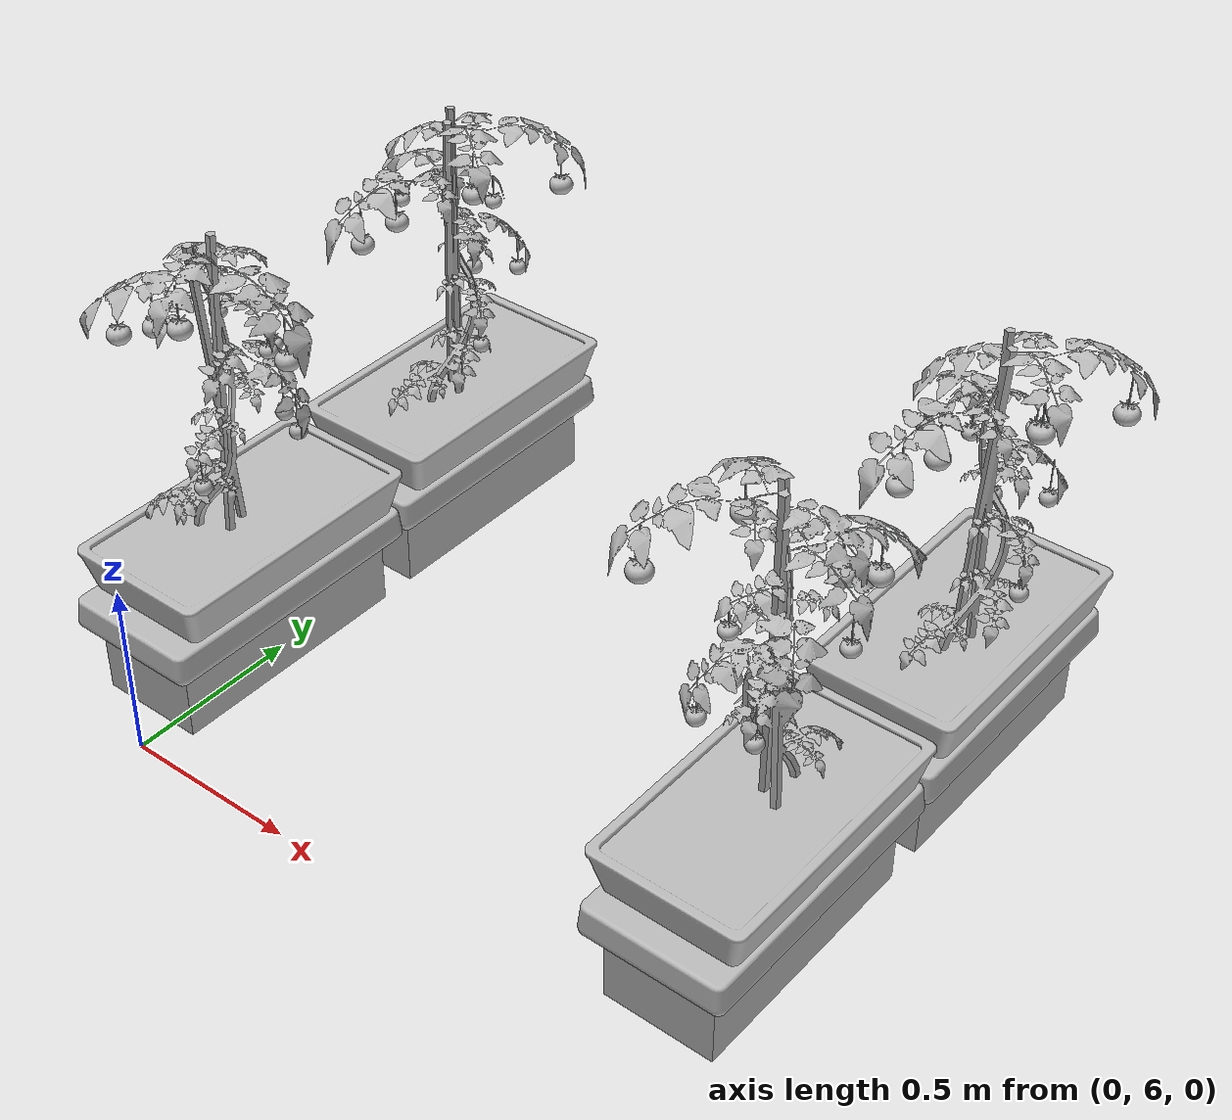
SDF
<sdf version="1.6">
 <world name="default">
  <model name="plant08">
   <static>0</static>
   <link name="tomato_plant_link">
    <inertial>
     <mass>20</mass>
     <inertia><ixx>1</ixx><ixy>0</ixy><ixz>0</ixz><iyy>1</iyy><iyz>0</iyz><izz>1</izz></inertia>
    </inertial>
    <visual name="visual">
     <geometry><mesh><uri>model://tomato_plant/meshes/tomato_plant.obj</uri></mesh></geometry>
    </visual>
    <collision name="collision">
     <pose>0 0 0.01 0 -0 0</pose>
     <geometry><cylinder><radius>0.2</radius><length>0.02</length></cylinder></geometry>
    </collision>
   </link>
   <link name="t_link_0">
    <pose>0.176111 0.046061 0.713729 0 -0 0</pose>
    <inertial>
     <mass>0.1</mass>
     <inertia><ixx>1</ixx><ixy>0</ixy><ixz>0</ixz><iyy>1</iyy><iyz>0</iyz><izz>1</izz></inertia>
    </inertial>
    <collision name="collision"><geometry><sphere><radius>0.02</radius></sphere></geometry></collision>
    <visual name="visual">
     <geometry><mesh><uri>model://green_tomato/meshes/green_tomato.obj</uri></mesh></geometry>
    </visual>
   </link>
   <joint name="t_joint_0" type="fixed">
    <parent>tomato_plant_link</parent>
    <child>t_link_0</child>
    <axis>
     <xyz>0 0 1</xyz>
     <use_parent_model_frame>1</use_parent_model_frame>
     <limit><lower>-1e+16</lower><upper>1e+16</upper></limit>
    </axis>
    <sensor name="force_torque" type="force_torque">
     <always_on>1</always_on>
     <update_rate>250</update_rate>
     <plugin name="breakable_0" filename="libBreakableJointPlugin.so">
      <breaking_force_N>20</breaking_force_N>
     </plugin>
    </sensor>
   </joint>
   <link name="t_link_1">
    <pose>0.063172 0.108629 0.685474 0 -0 0</pose>
    <inertial>
     <mass>0.1</mass>
     <inertia><ixx>1</ixx><ixy>0</ixy><ixz>0</ixz><iyy>1</iyy><iyz>0</iyz><izz>1</izz></inertia>
    </inertial>
    <collision name="collision"><geometry><sphere><radius>0.02</radius></sphere></geometry></collision>
    <visual name="visual">
     <geometry><mesh><uri>model://green_tomato/meshes/green_tomato.obj</uri></mesh></geometry>
    </visual>
   </link>
   <joint name="t_joint_1" type="fixed">
    <parent>tomato_plant_link</parent>
    <child>t_link_1</child>
    <axis>
     <xyz>0 0 1</xyz>
     <use_parent_model_frame>1</use_parent_model_frame>
     <limit><lower>-1e+16</lower><upper>1e+16</upper></limit>
    </axis>
    <sensor name="force_torque" type="force_torque">
     <always_on>1</always_on>
     <update_rate>250</update_rate>
     <plugin name="breakable_1" filename="libBreakableJointPlugin.so">
      <breaking_force_N>20</breaking_force_N>
     </plugin>
    </sensor>
   </joint>
   <link name="t_link_2">
    <pose>0.062027 -0.170581 0.614534 0 -0 0</pose>
    <inertial>
     <mass>0.1</mass>
     <inertia><ixx>1</ixx><ixy>0</ixy><ixz>0</ixz><iyy>1</iyy><iyz>0</iyz><izz>1</izz></inertia>
    </inertial>
    <collision name="collision"><geometry><sphere><radius>0.02</radius></sphere></geometry></collision>
    <visual name="visual">
     <geometry><mesh><uri>model://green_tomato/meshes/green_tomato.obj</uri></mesh></geometry>
    </visual>
   </link>
   <joint name="t_joint_2" type="fixed">
    <parent>tomato_plant_link</parent>
    <child>t_link_2</child>
    <axis>
     <xyz>0 0 1</xyz>
     <use_parent_model_frame>1</use_parent_model_frame>
     <limit><lower>-1e+16</lower><upper>1e+16</upper></limit>
    </axis>
    <sensor name="force_torque" type="force_torque">
     <always_on>1</always_on>
     <update_rate>250</update_rate>
     <plugin name="breakable_2" filename="libBreakableJointPlugin.so">
      <breaking_force_N>20</breaking_force_N>
     </plugin>
    </sensor>
   </joint>
   <link name="t_link_3">
    <pose>0.114746 0.0304 0.926457 0 -0 0</pose>
    <inertial>
     <mass>0.1</mass>
     <inertia><ixx>1</ixx><ixy>0</ixy><ixz>0</ixz><iyy>1</iyy><iyz>0</iyz><izz>1</izz></inertia>
    </inertial>
    <collision name="collision"><geometry><sphere><radius>0.02</radius></sphere></geometry></collision>
    <visual name="visual">
     <geometry><mesh><uri>model://yellow_tomato/meshes/yellow_tomato.obj</uri></mesh></geometry>
    </visual>
   </link>
   <joint name="t_joint_3" type="fixed">
    <parent>tomato_plant_link</parent>
    <child>t_link_3</child>
    <axis>
     <xyz>0 0 1</xyz>
     <use_parent_model_frame>1</use_parent_model_frame>
     <limit><lower>-1e+16</lower><upper>1e+16</upper></limit>
    </axis>
    <sensor name="force_torque" type="force_torque">
     <always_on>1</always_on>
     <update_rate>250</update_rate>
     <plugin name="breakable_3" filename="libBreakableJointPlugin.so">
      <breaking_force_N>20</breaking_force_N>
     </plugin>
    </sensor>
   </joint>
   <link name="t_link_4">
    <pose>0.003426 0.147925 0.840454 0 -0 0</pose>
    <inertial>
     <mass>0.1</mass>
     <inertia><ixx>1</ixx><ixy>0</ixy><ixz>0</ixz><iyy>1</iyy><iyz>0</iyz><izz>1</izz></inertia>
    </inertial>
    <collision name="collision"><geometry><sphere><radius>0.02</radius></sphere></geometry></collision>
    <visual name="visual">
     <geometry><mesh><uri>model://yellow_tomato/meshes/yellow_tomato.obj</uri></mesh></geometry>
    </visual>
   </link>
   <joint name="t_joint_4" type="fixed">
    <parent>tomato_plant_link</parent>
    <child>t_link_4</child>
    <axis>
     <xyz>0 0 1</xyz>
     <use_parent_model_frame>1</use_parent_model_frame>
     <limit><lower>-1e+16</lower><upper>1e+16</upper></limit>
    </axis>
    <sensor name="force_torque" type="force_torque">
     <always_on>1</always_on>
     <update_rate>250</update_rate>
     <plugin name="breakable_4" filename="libBreakableJointPlugin.so">
      <breaking_force_N>20</breaking_force_N>
     </plugin>
    </sensor>
   </joint>
   <link name="t_link_5">
    <pose>-0.12391 0.091553 0.91111 0 -0 0</pose>
    <inertial>
     <mass>0.1</mass>
     <inertia><ixx>1</ixx><ixy>0</ixy><ixz>0</ixz><iyy>1</iyy><iyz>0</iyz><izz>1</izz></inertia>
    </inertial>
    <collision name="collision"><geometry><sphere><radius>0.02</radius></sphere></geometry></collision>
    <visual name="visual">
     <geometry><mesh><uri>model://yellow_tomato/meshes/yellow_tomato.obj</uri></mesh></geometry>
    </visual>
   </link>
   <joint name="t_joint_5" type="fixed">
    <parent>tomato_plant_link</parent>
    <child>t_link_5</child>
    <axis>
     <xyz>0 0 1</xyz>
     <use_parent_model_frame>1</use_parent_model_frame>
     <limit><lower>-1e+16</lower><upper>1e+16</upper></limit>
    </axis>
    <sensor name="force_torque" type="force_torque">
     <always_on>1</always_on>
     <update_rate>250</update_rate>
     <plugin name="breakable_5" filename="libBreakableJointPlugin.so">
      <breaking_force_N>20</breaking_force_N>
     </plugin>
    </sensor>
   </joint>
   <link name="t_link_6">
    <pose>-0.23014 -0.132697 0.911579 0 -0 0</pose>
    <inertial>
     <mass>0.1</mass>
     <inertia><ixx>1</ixx><ixy>0</ixy><ixz>0</ixz><iyy>1</iyy><iyz>0</iyz><izz>1</izz></inertia>
    </inertial>
    <collision name="collision"><geometry><sphere><radius>0.03</radius></sphere></geometry></collision>
    <visual name="visual">
     <geometry><mesh><uri>model://red_tomato/meshes/red_tomato.obj</uri></mesh></geometry>
    </visual>
   </link>
   <joint name="t_joint_6" type="fixed">
    <parent>tomato_plant_link</parent>
    <child>t_link_6</child>
    <axis>
     <xyz>0 0 1</xyz>
     <use_parent_model_frame>1</use_parent_model_frame>
     <limit><lower>-1e+16</lower><upper>1e+16</upper></limit>
    </axis>
    <sensor name="force_torque" type="force_torque">
     <always_on>1</always_on>
     <update_rate>250</update_rate>
     <plugin name="breakable_6" filename="libBreakableJointPlugin.so">
      <breaking_force_N>20</breaking_force_N>
     </plugin>
    </sensor>
   </joint>
   <link name="t_link_7">
    <pose>-0.139776 -0.09326 0.950185 0 -0 0</pose>
    <inertial>
     <mass>0.1</mass>
     <inertia><ixx>1</ixx><ixy>0</ixy><ixz>0</ixz><iyy>1</iyy><iyz>0</iyz><izz>1</izz></inertia>
    </inertial>
    <collision name="collision"><geometry><sphere><radius>0.03</radius></sphere></geometry></collision>
    <visual name="visual">
     <geometry><mesh><uri>model://red_tomato/meshes/red_tomato.obj</uri></mesh></geometry>
    </visual>
   </link>
   <joint name="t_joint_7" type="fixed">
    <parent>tomato_plant_link</parent>
    <child>t_link_7</child>
    <axis>
     <xyz>0 0 1</xyz>
     <use_parent_model_frame>1</use_parent_model_frame>
     <limit><lower>-1e+16</lower><upper>1e+16</upper></limit>
    </axis>
    <sensor name="force_torque" type="force_torque">
     <always_on>1</always_on>
     <update_rate>250</update_rate>
     <plugin name="breakable_7" filename="libBreakableJointPlugin.so">
      <breaking_force_N>20</breaking_force_N>
     </plugin>
    </sensor>
   </joint>
   <link name="t_link_8">
    <pose>0.284181 -0.063758 1.01928 0 -0 0</pose>
    <inertial>
     <mass>0.1</mass>
     <inertia><ixx>1</ixx><ixy>0</ixy><ixz>0</ixz><iyy>1</iyy><iyz>0</iyz><izz>1</izz></inertia>
    </inertial>
    <collision name="collision"><geometry><sphere><radius>0.03</radius></sphere></geometry></collision>
    <visual name="visual">
     <geometry><mesh><uri>model://red_tomato/meshes/red_tomato.obj</uri></mesh></geometry>
    </visual>
   </link>
   <joint name="t_joint_8" type="fixed">
    <parent>tomato_plant_link</parent>
    <child>t_link_8</child>
    <axis>
     <xyz>0 0 1</xyz>
     <use_parent_model_frame>1</use_parent_model_frame>
     <limit><lower>-1e+16</lower><upper>1e+16</upper></limit>
    </axis>
    <sensor name="force_torque" type="force_torque">
     <always_on>1</always_on>
     <update_rate>250</update_rate>
     <plugin name="breakable_8" filename="libBreakableJointPlugin.so">
      <breaking_force_N>20</breaking_force_N>
     </plugin>
    </sensor>
   </joint>
   <link name="t_link_9">
    <pose>0.055319 -0.176349 1.06525 0 -0 0</pose>
    <inertial>
     <mass>0.1</mass>
     <inertia><ixx>1</ixx><ixy>0</ixy><ixz>0</ixz><iyy>1</iyy><iyz>0</iyz><izz>1</izz></inertia>
    </inertial>
    <collision name="collision"><geometry><sphere><radius>0.03</radius></sphere></geometry></collision>
    <visual name="visual">
     <geometry><mesh><uri>model://red_tomato/meshes/red_tomato.obj</uri></mesh></geometry>
    </visual>
   </link>
   <joint name="t_joint_9" type="fixed">
    <parent>tomato_plant_link</parent>
    <child>t_link_9</child>
    <axis>
     <xyz>0 0 1</xyz>
     <use_parent_model_frame>1</use_parent_model_frame>
     <limit><lower>-1e+16</lower><upper>1e+16</upper></limit>
    </axis>
    <sensor name="force_torque" type="force_torque">
     <always_on>1</always_on>
     <update_rate>250</update_rate>
     <plugin name="breakable_9" filename="libBreakableJointPlugin.so">
      <breaking_force_N>20</breaking_force_N>
     </plugin>
    </sensor>
   </joint>
   <pose>0.017347 6.40861 0.109219 -0.000983 0.00198 -0.000387</pose>
  </model>
  <model name="trough08">
   <static>1</static>
   <link name="trough_link">
    <visual name="visual"><geometry><mesh><uri>model://trough/meshes/truf.obj</uri></mesh></geometry></visual>
    <collision name="collision">
     <geometry><mesh><uri>model://trough/meshes/truf.obj</uri></mesh></geometry>
    </collision>
   </link>
   <link name="brick">
    <pose>0 -0.2 0 0 -0 0</pose>
    <visual name="visual"><geometry><mesh><uri>model://trough/meshes/brick.obj</uri></mesh></geometry></visual>
    <collision name="collision">
     <geometry><mesh><uri>model://trough/meshes/brick.obj</uri></mesh></geometry>
    </collision>
   </link>
   <pose>0 6.4 0.29 1.57 -0 1.57</pose>
  </model>
  <model name="plant09">
   <static>0</static>
   <link name="tomato_plant_link">
    <inertial>
     <mass>20</mass>
     <inertia><ixx>1</ixx><ixy>0</ixy><ixz>0</ixz><iyy>1</iyy><iyz>0</iyz><izz>1</izz></inertia>
    </inertial>
    <visual name="visual">
     <geometry><mesh><uri>model://tomato_plant/meshes/tomato_plant.obj</uri></mesh></geometry>
    </visual>
    <collision name="collision">
     <pose>0 0 0.01 0 -0 0</pose>
     <geometry><cylinder><radius>0.2</radius><length>0.02</length></cylinder></geometry>
    </collision>
   </link>
   <link name="t_link_0">
    <pose>0.176111 0.046061 0.713729 0 -0 0</pose>
    <inertial>
     <mass>0.1</mass>
     <inertia><ixx>1</ixx><ixy>0</ixy><ixz>0</ixz><iyy>1</iyy><iyz>0</iyz><izz>1</izz></inertia>
    </inertial>
    <collision name="collision"><geometry><sphere><radius>0.02</radius></sphere></geometry></collision>
    <visual name="visual">
     <geometry><mesh><uri>model://green_tomato/meshes/green_tomato.obj</uri></mesh></geometry>
    </visual>
   </link>
   <joint name="t_joint_0" type="fixed">
    <parent>tomato_plant_link</parent>
    <child>t_link_0</child>
    <axis>
     <xyz>0 0 1</xyz>
     <use_parent_model_frame>1</use_parent_model_frame>
     <limit><lower>-1e+16</lower><upper>1e+16</upper></limit>
    </axis>
    <sensor name="force_torque" type="force_torque">
     <always_on>1</always_on>
     <update_rate>250</update_rate>
     <plugin name="breakable_0" filename="libBreakableJointPlugin.so">
      <breaking_force_N>20</breaking_force_N>
     </plugin>
    </sensor>
   </joint>
   <link name="t_link_1">
    <pose>0.063172 0.108629 0.685474 0 -0 0</pose>
    <inertial>
     <mass>0.1</mass>
     <inertia><ixx>1</ixx><ixy>0</ixy><ixz>0</ixz><iyy>1</iyy><iyz>0</iyz><izz>1</izz></inertia>
    </inertial>
    <collision name="collision"><geometry><sphere><radius>0.02</radius></sphere></geometry></collision>
    <visual name="visual">
     <geometry><mesh><uri>model://green_tomato/meshes/green_tomato.obj</uri></mesh></geometry>
    </visual>
   </link>
   <joint name="t_joint_1" type="fixed">
    <parent>tomato_plant_link</parent>
    <child>t_link_1</child>
    <axis>
     <xyz>0 0 1</xyz>
     <use_parent_model_frame>1</use_parent_model_frame>
     <limit><lower>-1e+16</lower><upper>1e+16</upper></limit>
    </axis>
    <sensor name="force_torque" type="force_torque">
     <always_on>1</always_on>
     <update_rate>250</update_rate>
     <plugin name="breakable_1" filename="libBreakableJointPlugin.so">
      <breaking_force_N>20</breaking_force_N>
     </plugin>
    </sensor>
   </joint>
   <link name="t_link_2">
    <pose>0.062027 -0.170581 0.614534 0 -0 0</pose>
    <inertial>
     <mass>0.1</mass>
     <inertia><ixx>1</ixx><ixy>0</ixy><ixz>0</ixz><iyy>1</iyy><iyz>0</iyz><izz>1</izz></inertia>
    </inertial>
    <collision name="collision"><geometry><sphere><radius>0.02</radius></sphere></geometry></collision>
    <visual name="visual">
     <geometry><mesh><uri>model://green_tomato/meshes/green_tomato.obj</uri></mesh></geometry>
    </visual>
   </link>
   <joint name="t_joint_2" type="fixed">
    <parent>tomato_plant_link</parent>
    <child>t_link_2</child>
    <axis>
     <xyz>0 0 1</xyz>
     <use_parent_model_frame>1</use_parent_model_frame>
     <limit><lower>-1e+16</lower><upper>1e+16</upper></limit>
    </axis>
    <sensor name="force_torque" type="force_torque">
     <always_on>1</always_on>
     <update_rate>250</update_rate>
     <plugin name="breakable_2" filename="libBreakableJointPlugin.so">
      <breaking_force_N>20</breaking_force_N>
     </plugin>
    </sensor>
   </joint>
   <link name="t_link_3">
    <pose>0.114746 0.0304 0.926457 0 -0 0</pose>
    <inertial>
     <mass>0.1</mass>
     <inertia><ixx>1</ixx><ixy>0</ixy><ixz>0</ixz><iyy>1</iyy><iyz>0</iyz><izz>1</izz></inertia>
    </inertial>
    <collision name="collision"><geometry><sphere><radius>0.02</radius></sphere></geometry></collision>
    <visual name="visual">
     <geometry><mesh><uri>model://yellow_tomato/meshes/yellow_tomato.obj</uri></mesh></geometry>
    </visual>
   </link>
   <joint name="t_joint_3" type="fixed">
    <parent>tomato_plant_link</parent>
    <child>t_link_3</child>
    <axis>
     <xyz>0 0 1</xyz>
     <use_parent_model_frame>1</use_parent_model_frame>
     <limit><lower>-1e+16</lower><upper>1e+16</upper></limit>
    </axis>
    <sensor name="force_torque" type="force_torque">
     <always_on>1</always_on>
     <update_rate>250</update_rate>
     <plugin name="breakable_3" filename="libBreakableJointPlugin.so">
      <breaking_force_N>20</breaking_force_N>
     </plugin>
    </sensor>
   </joint>
   <link name="t_link_4">
    <pose>0.003426 0.147925 0.840454 0 -0 0</pose>
    <inertial>
     <mass>0.1</mass>
     <inertia><ixx>1</ixx><ixy>0</ixy><ixz>0</ixz><iyy>1</iyy><iyz>0</iyz><izz>1</izz></inertia>
    </inertial>
    <collision name="collision"><geometry><sphere><radius>0.02</radius></sphere></geometry></collision>
    <visual name="visual">
     <geometry><mesh><uri>model://yellow_tomato/meshes/yellow_tomato.obj</uri></mesh></geometry>
    </visual>
   </link>
   <joint name="t_joint_4" type="fixed">
    <parent>tomato_plant_link</parent>
    <child>t_link_4</child>
    <axis>
     <xyz>0 0 1</xyz>
     <use_parent_model_frame>1</use_parent_model_frame>
     <limit><lower>-1e+16</lower><upper>1e+16</upper></limit>
    </axis>
    <sensor name="force_torque" type="force_torque">
     <always_on>1</always_on>
     <update_rate>250</update_rate>
     <plugin name="breakable_4" filename="libBreakableJointPlugin.so">
      <breaking_force_N>20</breaking_force_N>
     </plugin>
    </sensor>
   </joint>
   <link name="t_link_5">
    <pose>-0.12391 0.091553 0.91111 0 -0 0</pose>
    <inertial>
     <mass>0.1</mass>
     <inertia><ixx>1</ixx><ixy>0</ixy><ixz>0</ixz><iyy>1</iyy><iyz>0</iyz><izz>1</izz></inertia>
    </inertial>
    <collision name="collision"><geometry><sphere><radius>0.02</radius></sphere></geometry></collision>
    <visual name="visual">
     <geometry><mesh><uri>model://yellow_tomato/meshes/yellow_tomato.obj</uri></mesh></geometry>
    </visual>
   </link>
   <joint name="t_joint_5" type="fixed">
    <parent>tomato_plant_link</parent>
    <child>t_link_5</child>
    <axis>
     <xyz>0 0 1</xyz>
     <use_parent_model_frame>1</use_parent_model_frame>
     <limit><lower>-1e+16</lower><upper>1e+16</upper></limit>
    </axis>
    <sensor name="force_torque" type="force_torque">
     <always_on>1</always_on>
     <update_rate>250</update_rate>
     <plugin name="breakable_5" filename="libBreakableJointPlugin.so">
      <breaking_force_N>20</breaking_force_N>
     </plugin>
    </sensor>
   </joint>
   <link name="t_link_6">
    <pose>-0.23014 -0.132697 0.911579 0 -0 0</pose>
    <inertial>
     <mass>0.1</mass>
     <inertia><ixx>1</ixx><ixy>0</ixy><ixz>0</ixz><iyy>1</iyy><iyz>0</iyz><izz>1</izz></inertia>
    </inertial>
    <collision name="collision"><geometry><sphere><radius>0.03</radius></sphere></geometry></collision>
    <visual name="visual">
     <geometry><mesh><uri>model://red_tomato/meshes/red_tomato.obj</uri></mesh></geometry>
    </visual>
   </link>
   <joint name="t_joint_6" type="fixed">
    <parent>tomato_plant_link</parent>
    <child>t_link_6</child>
    <axis>
     <xyz>0 0 1</xyz>
     <use_parent_model_frame>1</use_parent_model_frame>
     <limit><lower>-1e+16</lower><upper>1e+16</upper></limit>
    </axis>
    <sensor name="force_torque" type="force_torque">
     <always_on>1</always_on>
     <update_rate>250</update_rate>
     <plugin name="breakable_6" filename="libBreakableJointPlugin.so">
      <breaking_force_N>20</breaking_force_N>
     </plugin>
    </sensor>
   </joint>
   <link name="t_link_7">
    <pose>-0.139776 -0.09326 0.950185 0 -0 0</pose>
    <inertial>
     <mass>0.1</mass>
     <inertia><ixx>1</ixx><ixy>0</ixy><ixz>0</ixz><iyy>1</iyy><iyz>0</iyz><izz>1</izz></inertia>
    </inertial>
    <collision name="collision"><geometry><sphere><radius>0.03</radius></sphere></geometry></collision>
    <visual name="visual">
     <geometry><mesh><uri>model://red_tomato/meshes/red_tomato.obj</uri></mesh></geometry>
    </visual>
   </link>
   <joint name="t_joint_7" type="fixed">
    <parent>tomato_plant_link</parent>
    <child>t_link_7</child>
    <axis>
     <xyz>0 0 1</xyz>
     <use_parent_model_frame>1</use_parent_model_frame>
     <limit><lower>-1e+16</lower><upper>1e+16</upper></limit>
    </axis>
    <sensor name="force_torque" type="force_torque">
     <always_on>1</always_on>
     <update_rate>250</update_rate>
     <plugin name="breakable_7" filename="libBreakableJointPlugin.so">
      <breaking_force_N>20</breaking_force_N>
     </plugin>
    </sensor>
   </joint>
   <link name="t_link_8">
    <pose>0.284181 -0.063758 1.01928 0 -0 0</pose>
    <inertial>
     <mass>0.1</mass>
     <inertia><ixx>1</ixx><ixy>0</ixy><ixz>0</ixz><iyy>1</iyy><iyz>0</iyz><izz>1</izz></inertia>
    </inertial>
    <collision name="collision"><geometry><sphere><radius>0.03</radius></sphere></geometry></collision>
    <visual name="visual">
     <geometry><mesh><uri>model://red_tomato/meshes/red_tomato.obj</uri></mesh></geometry>
    </visual>
   </link>
   <joint name="t_joint_8" type="fixed">
    <parent>tomato_plant_link</parent>
    <child>t_link_8</child>
    <axis>
     <xyz>0 0 1</xyz>
     <use_parent_model_frame>1</use_parent_model_frame>
     <limit><lower>-1e+16</lower><upper>1e+16</upper></limit>
    </axis>
    <sensor name="force_torque" type="force_torque">
     <always_on>1</always_on>
     <update_rate>250</update_rate>
     <plugin name="breakable_8" filename="libBreakableJointPlugin.so">
      <breaking_force_N>20</breaking_force_N>
     </plugin>
    </sensor>
   </joint>
   <link name="t_link_9">
    <pose>0.055319 -0.176349 1.06525 0 -0 0</pose>
    <inertial>
     <mass>0.1</mass>
     <inertia><ixx>1</ixx><ixy>0</ixy><ixz>0</ixz><iyy>1</iyy><iyz>0</iyz><izz>1</izz></inertia>
    </inertial>
    <collision name="collision"><geometry><sphere><radius>0.03</radius></sphere></geometry></collision>
    <visual name="visual">
     <geometry><mesh><uri>model://red_tomato/meshes/red_tomato.obj</uri></mesh></geometry>
    </visual>
   </link>
   <joint name="t_joint_9" type="fixed">
    <parent>tomato_plant_link</parent>
    <child>t_link_9</child>
    <axis>
     <xyz>0 0 1</xyz>
     <use_parent_model_frame>1</use_parent_model_frame>
     <limit><lower>-1e+16</lower><upper>1e+16</upper></limit>
    </axis>
    <sensor name="force_torque" type="force_torque">
     <always_on>1</always_on>
     <update_rate>250</update_rate>
     <plugin name="breakable_9" filename="libBreakableJointPlugin.so">
      <breaking_force_N>20</breaking_force_N>
     </plugin>
    </sensor>
   </joint>
   <pose>0.016952 7.20842 0.108623 0.00055 0.001737 0.784883</pose>
  </model>
  <model name="trough09">
   <static>1</static>
   <link name="trough_link">
    <visual name="visual"><geometry><mesh><uri>model://trough/meshes/truf.obj</uri></mesh></geometry></visual>
    <collision name="collision">
     <geometry><mesh><uri>model://trough/meshes/truf.obj</uri></mesh></geometry>
    </collision>
   </link>
   <link name="brick">
    <pose>0 -0.2 0 0 -0 0</pose>
    <visual name="visual"><geometry><mesh><uri>model://trough/meshes/brick.obj</uri></mesh></geometry></visual>
    <collision name="collision">
     <geometry><mesh><uri>model://trough/meshes/brick.obj</uri></mesh></geometry>
    </collision>
   </link>
   <pose>0 7.2 0.29 1.57 -0 1.57</pose>
  </model>
  <model name="plant18">
   <static>0</static>
   <link name="tomato_plant_link">
    <inertial>
     <mass>20</mass>
     <inertia><ixx>1</ixx><ixy>0</ixy><ixz>0</ixz><iyy>1</iyy><iyz>0</iyz><izz>1</izz></inertia>
    </inertial>
    <visual name="visual">
     <geometry><mesh><uri>model://tomato_plant/meshes/tomato_plant.obj</uri></mesh></geometry>
    </visual>
    <collision name="collision">
     <pose>0 0 0.01 0 -0 0</pose>
     <geometry><cylinder><radius>0.2</radius><length>0.02</length></cylinder></geometry>
    </collision>
   </link>
   <link name="t_link_0">
    <pose>0.176111 0.046061 0.713729 0 -0 0</pose>
    <inertial>
     <mass>0.1</mass>
     <inertia><ixx>1</ixx><ixy>0</ixy><ixz>0</ixz><iyy>1</iyy><iyz>0</iyz><izz>1</izz></inertia>
    </inertial>
    <collision name="collision"><geometry><sphere><radius>0.02</radius></sphere></geometry></collision>
    <visual name="visual">
     <geometry><mesh><uri>model://green_tomato/meshes/green_tomato.obj</uri></mesh></geometry>
    </visual>
   </link>
   <joint name="t_joint_0" type="fixed">
    <parent>tomato_plant_link</parent>
    <child>t_link_0</child>
    <axis>
     <xyz>0 0 1</xyz>
     <use_parent_model_frame>1</use_parent_model_frame>
     <limit><lower>-1e+16</lower><upper>1e+16</upper></limit>
    </axis>
    <sensor name="force_torque" type="force_torque">
     <always_on>1</always_on>
     <update_rate>250</update_rate>
     <plugin name="breakable_0" filename="libBreakableJointPlugin.so">
      <breaking_force_N>20</breaking_force_N>
     </plugin>
    </sensor>
   </joint>
   <link name="t_link_1">
    <pose>0.063172 0.108629 0.685474 0 -0 0</pose>
    <inertial>
     <mass>0.1</mass>
     <inertia><ixx>1</ixx><ixy>0</ixy><ixz>0</ixz><iyy>1</iyy><iyz>0</iyz><izz>1</izz></inertia>
    </inertial>
    <collision name="collision"><geometry><sphere><radius>0.02</radius></sphere></geometry></collision>
    <visual name="visual">
     <geometry><mesh><uri>model://green_tomato/meshes/green_tomato.obj</uri></mesh></geometry>
    </visual>
   </link>
   <joint name="t_joint_1" type="fixed">
    <parent>tomato_plant_link</parent>
    <child>t_link_1</child>
    <axis>
     <xyz>0 0 1</xyz>
     <use_parent_model_frame>1</use_parent_model_frame>
     <limit><lower>-1e+16</lower><upper>1e+16</upper></limit>
    </axis>
    <sensor name="force_torque" type="force_torque">
     <always_on>1</always_on>
     <update_rate>250</update_rate>
     <plugin name="breakable_1" filename="libBreakableJointPlugin.so">
      <breaking_force_N>20</breaking_force_N>
     </plugin>
    </sensor>
   </joint>
   <link name="t_link_2">
    <pose>0.062027 -0.170581 0.614534 0 -0 0</pose>
    <inertial>
     <mass>0.1</mass>
     <inertia><ixx>1</ixx><ixy>0</ixy><ixz>0</ixz><iyy>1</iyy><iyz>0</iyz><izz>1</izz></inertia>
    </inertial>
    <collision name="collision"><geometry><sphere><radius>0.02</radius></sphere></geometry></collision>
    <visual name="visual">
     <geometry><mesh><uri>model://green_tomato/meshes/green_tomato.obj</uri></mesh></geometry>
    </visual>
   </link>
   <joint name="t_joint_2" type="fixed">
    <parent>tomato_plant_link</parent>
    <child>t_link_2</child>
    <axis>
     <xyz>0 0 1</xyz>
     <use_parent_model_frame>1</use_parent_model_frame>
     <limit><lower>-1e+16</lower><upper>1e+16</upper></limit>
    </axis>
    <sensor name="force_torque" type="force_torque">
     <always_on>1</always_on>
     <update_rate>250</update_rate>
     <plugin name="breakable_2" filename="libBreakableJointPlugin.so">
      <breaking_force_N>20</breaking_force_N>
     </plugin>
    </sensor>
   </joint>
   <link name="t_link_3">
    <pose>0.114746 0.0304 0.926457 0 -0 0</pose>
    <inertial>
     <mass>0.1</mass>
     <inertia><ixx>1</ixx><ixy>0</ixy><ixz>0</ixz><iyy>1</iyy><iyz>0</iyz><izz>1</izz></inertia>
    </inertial>
    <collision name="collision"><geometry><sphere><radius>0.02</radius></sphere></geometry></collision>
    <visual name="visual">
     <geometry><mesh><uri>model://yellow_tomato/meshes/yellow_tomato.obj</uri></mesh></geometry>
    </visual>
   </link>
   <joint name="t_joint_3" type="fixed">
    <parent>tomato_plant_link</parent>
    <child>t_link_3</child>
    <axis>
     <xyz>0 0 1</xyz>
     <use_parent_model_frame>1</use_parent_model_frame>
     <limit><lower>-1e+16</lower><upper>1e+16</upper></limit>
    </axis>
    <sensor name="force_torque" type="force_torque">
     <always_on>1</always_on>
     <update_rate>250</update_rate>
     <plugin name="breakable_3" filename="libBreakableJointPlugin.so">
      <breaking_force_N>20</breaking_force_N>
     </plugin>
    </sensor>
   </joint>
   <link name="t_link_4">
    <pose>0.003426 0.147925 0.840454 0 -0 0</pose>
    <inertial>
     <mass>0.1</mass>
     <inertia><ixx>1</ixx><ixy>0</ixy><ixz>0</ixz><iyy>1</iyy><iyz>0</iyz><izz>1</izz></inertia>
    </inertial>
    <collision name="collision"><geometry><sphere><radius>0.02</radius></sphere></geometry></collision>
    <visual name="visual">
     <geometry><mesh><uri>model://yellow_tomato/meshes/yellow_tomato.obj</uri></mesh></geometry>
    </visual>
   </link>
   <joint name="t_joint_4" type="fixed">
    <parent>tomato_plant_link</parent>
    <child>t_link_4</child>
    <axis>
     <xyz>0 0 1</xyz>
     <use_parent_model_frame>1</use_parent_model_frame>
     <limit><lower>-1e+16</lower><upper>1e+16</upper></limit>
    </axis>
    <sensor name="force_torque" type="force_torque">
     <always_on>1</always_on>
     <update_rate>250</update_rate>
     <plugin name="breakable_4" filename="libBreakableJointPlugin.so">
      <breaking_force_N>20</breaking_force_N>
     </plugin>
    </sensor>
   </joint>
   <link name="t_link_5">
    <pose>-0.12391 0.091553 0.91111 0 -0 0</pose>
    <inertial>
     <mass>0.1</mass>
     <inertia><ixx>1</ixx><ixy>0</ixy><ixz>0</ixz><iyy>1</iyy><iyz>0</iyz><izz>1</izz></inertia>
    </inertial>
    <collision name="collision"><geometry><sphere><radius>0.02</radius></sphere></geometry></collision>
    <visual name="visual">
     <geometry><mesh><uri>model://yellow_tomato/meshes/yellow_tomato.obj</uri></mesh></geometry>
    </visual>
   </link>
   <joint name="t_joint_5" type="fixed">
    <parent>tomato_plant_link</parent>
    <child>t_link_5</child>
    <axis>
     <xyz>0 0 1</xyz>
     <use_parent_model_frame>1</use_parent_model_frame>
     <limit><lower>-1e+16</lower><upper>1e+16</upper></limit>
    </axis>
    <sensor name="force_torque" type="force_torque">
     <always_on>1</always_on>
     <update_rate>250</update_rate>
     <plugin name="breakable_5" filename="libBreakableJointPlugin.so">
      <breaking_force_N>20</breaking_force_N>
     </plugin>
    </sensor>
   </joint>
   <link name="t_link_6">
    <pose>-0.23014 -0.132697 0.911579 0 -0 0</pose>
    <inertial>
     <mass>0.1</mass>
     <inertia><ixx>1</ixx><ixy>0</ixy><ixz>0</ixz><iyy>1</iyy><iyz>0</iyz><izz>1</izz></inertia>
    </inertial>
    <collision name="collision"><geometry><sphere><radius>0.03</radius></sphere></geometry></collision>
    <visual name="visual">
     <geometry><mesh><uri>model://red_tomato/meshes/red_tomato.obj</uri></mesh></geometry>
    </visual>
   </link>
   <joint name="t_joint_6" type="fixed">
    <parent>tomato_plant_link</parent>
    <child>t_link_6</child>
    <axis>
     <xyz>0 0 1</xyz>
     <use_parent_model_frame>1</use_parent_model_frame>
     <limit><lower>-1e+16</lower><upper>1e+16</upper></limit>
    </axis>
    <sensor name="force_torque" type="force_torque">
     <always_on>1</always_on>
     <update_rate>250</update_rate>
     <plugin name="breakable_6" filename="libBreakableJointPlugin.so">
      <breaking_force_N>20</breaking_force_N>
     </plugin>
    </sensor>
   </joint>
   <link name="t_link_7">
    <pose>-0.139776 -0.09326 0.950185 0 -0 0</pose>
    <inertial>
     <mass>0.1</mass>
     <inertia><ixx>1</ixx><ixy>0</ixy><ixz>0</ixz><iyy>1</iyy><iyz>0</iyz><izz>1</izz></inertia>
    </inertial>
    <collision name="collision"><geometry><sphere><radius>0.03</radius></sphere></geometry></collision>
    <visual name="visual">
     <geometry><mesh><uri>model://red_tomato/meshes/red_tomato.obj</uri></mesh></geometry>
    </visual>
   </link>
   <joint name="t_joint_7" type="fixed">
    <parent>tomato_plant_link</parent>
    <child>t_link_7</child>
    <axis>
     <xyz>0 0 1</xyz>
     <use_parent_model_frame>1</use_parent_model_frame>
     <limit><lower>-1e+16</lower><upper>1e+16</upper></limit>
    </axis>
    <sensor name="force_torque" type="force_torque">
     <always_on>1</always_on>
     <update_rate>250</update_rate>
     <plugin name="breakable_7" filename="libBreakableJointPlugin.so">
      <breaking_force_N>20</breaking_force_N>
     </plugin>
    </sensor>
   </joint>
   <link name="t_link_8">
    <pose>0.284181 -0.063758 1.01928 0 -0 0</pose>
    <inertial>
     <mass>0.1</mass>
     <inertia><ixx>1</ixx><ixy>0</ixy><ixz>0</ixz><iyy>1</iyy><iyz>0</iyz><izz>1</izz></inertia>
    </inertial>
    <collision name="collision"><geometry><sphere><radius>0.03</radius></sphere></geometry></collision>
    <visual name="visual">
     <geometry><mesh><uri>model://red_tomato/meshes/red_tomato.obj</uri></mesh></geometry>
    </visual>
   </link>
   <joint name="t_joint_8" type="fixed">
    <parent>tomato_plant_link</parent>
    <child>t_link_8</child>
    <axis>
     <xyz>0 0 1</xyz>
     <use_parent_model_frame>1</use_parent_model_frame>
     <limit><lower>-1e+16</lower><upper>1e+16</upper></limit>
    </axis>
    <sensor name="force_torque" type="force_torque">
     <always_on>1</always_on>
     <update_rate>250</update_rate>
     <plugin name="breakable_8" filename="libBreakableJointPlugin.so">
      <breaking_force_N>20</breaking_force_N>
     </plugin>
    </sensor>
   </joint>
   <link name="t_link_9">
    <pose>0.055319 -0.176349 1.06525 0 -0 0</pose>
    <inertial>
     <mass>0.1</mass>
     <inertia><ixx>1</ixx><ixy>0</ixy><ixz>0</ixz><iyy>1</iyy><iyz>0</iyz><izz>1</izz></inertia>
    </inertial>
    <collision name="collision"><geometry><sphere><radius>0.03</radius></sphere></geometry></collision>
    <visual name="visual">
     <geometry><mesh><uri>model://red_tomato/meshes/red_tomato.obj</uri></mesh></geometry>
    </visual>
   </link>
   <joint name="t_joint_9" type="fixed">
    <parent>tomato_plant_link</parent>
    <child>t_link_9</child>
    <axis>
     <xyz>0 0 1</xyz>
     <use_parent_model_frame>1</use_parent_model_frame>
     <limit><lower>-1e+16</lower><upper>1e+16</upper></limit>
    </axis>
    <sensor name="force_torque" type="force_torque">
     <always_on>1</always_on>
     <update_rate>250</update_rate>
     <plugin name="breakable_9" filename="libBreakableJointPlugin.so">
      <breaking_force_N>20</breaking_force_N>
     </plugin>
    </sensor>
   </joint>
   <pose>1.63721 6.4086 0.106588 -0.000637 -0.001845 -2.3532</pose>
  </model>
  <model name="trough18">
   <static>1</static>
   <link name="trough_link">
    <visual name="visual"><geometry><mesh><uri>model://trough/meshes/truf.obj</uri></mesh></geometry></visual>
    <collision name="collision">
     <geometry><mesh><uri>model://trough/meshes/truf.obj</uri></mesh></geometry>
    </collision>
   </link>
   <link name="brick">
    <pose>0 -0.2 0 0 -0 0</pose>
    <visual name="visual"><geometry><mesh><uri>model://trough/meshes/brick.obj</uri></mesh></geometry></visual>
    <collision name="collision">
     <geometry><mesh><uri>model://trough/meshes/brick.obj</uri></mesh></geometry>
    </collision>
   </link>
   <pose>1.62 6.4 0.29 1.57 -0 1.57</pose>
  </model>
  <model name="plant19">
   <static>0</static>
   <link name="tomato_plant_link">
    <inertial>
     <mass>20</mass>
     <inertia><ixx>1</ixx><ixy>0</ixy><ixz>0</ixz><iyy>1</iyy><iyz>0</iyz><izz>1</izz></inertia>
    </inertial>
    <visual name="visual">
     <geometry><mesh><uri>model://tomato_plant/meshes/tomato_plant.obj</uri></mesh></geometry>
    </visual>
    <collision name="collision">
     <pose>0 0 0.01 0 -0 0</pose>
     <geometry><cylinder><radius>0.2</radius><length>0.02</length></cylinder></geometry>
    </collision>
   </link>
   <link name="t_link_0">
    <pose>0.176111 0.046061 0.713729 0 -0 0</pose>
    <inertial>
     <mass>0.1</mass>
     <inertia><ixx>1</ixx><ixy>0</ixy><ixz>0</ixz><iyy>1</iyy><iyz>0</iyz><izz>1</izz></inertia>
    </inertial>
    <collision name="collision"><geometry><sphere><radius>0.02</radius></sphere></geometry></collision>
    <visual name="visual">
     <geometry><mesh><uri>model://green_tomato/meshes/green_tomato.obj</uri></mesh></geometry>
    </visual>
   </link>
   <joint name="t_joint_0" type="fixed">
    <parent>tomato_plant_link</parent>
    <child>t_link_0</child>
    <axis>
     <xyz>0 0 1</xyz>
     <use_parent_model_frame>1</use_parent_model_frame>
     <limit><lower>-1e+16</lower><upper>1e+16</upper></limit>
    </axis>
    <sensor name="force_torque" type="force_torque">
     <always_on>1</always_on>
     <update_rate>250</update_rate>
     <plugin name="breakable_0" filename="libBreakableJointPlugin.so">
      <breaking_force_N>20</breaking_force_N>
     </plugin>
    </sensor>
   </joint>
   <link name="t_link_1">
    <pose>0.063172 0.108629 0.685474 0 -0 0</pose>
    <inertial>
     <mass>0.1</mass>
     <inertia><ixx>1</ixx><ixy>0</ixy><ixz>0</ixz><iyy>1</iyy><iyz>0</iyz><izz>1</izz></inertia>
    </inertial>
    <collision name="collision"><geometry><sphere><radius>0.02</radius></sphere></geometry></collision>
    <visual name="visual">
     <geometry><mesh><uri>model://green_tomato/meshes/green_tomato.obj</uri></mesh></geometry>
    </visual>
   </link>
   <joint name="t_joint_1" type="fixed">
    <parent>tomato_plant_link</parent>
    <child>t_link_1</child>
    <axis>
     <xyz>0 0 1</xyz>
     <use_parent_model_frame>1</use_parent_model_frame>
     <limit><lower>-1e+16</lower><upper>1e+16</upper></limit>
    </axis>
    <sensor name="force_torque" type="force_torque">
     <always_on>1</always_on>
     <update_rate>250</update_rate>
     <plugin name="breakable_1" filename="libBreakableJointPlugin.so">
      <breaking_force_N>20</breaking_force_N>
     </plugin>
    </sensor>
   </joint>
   <link name="t_link_2">
    <pose>0.062027 -0.170581 0.614534 0 -0 0</pose>
    <inertial>
     <mass>0.1</mass>
     <inertia><ixx>1</ixx><ixy>0</ixy><ixz>0</ixz><iyy>1</iyy><iyz>0</iyz><izz>1</izz></inertia>
    </inertial>
    <collision name="collision"><geometry><sphere><radius>0.02</radius></sphere></geometry></collision>
    <visual name="visual">
     <geometry><mesh><uri>model://green_tomato/meshes/green_tomato.obj</uri></mesh></geometry>
    </visual>
   </link>
   <joint name="t_joint_2" type="fixed">
    <parent>tomato_plant_link</parent>
    <child>t_link_2</child>
    <axis>
     <xyz>0 0 1</xyz>
     <use_parent_model_frame>1</use_parent_model_frame>
     <limit><lower>-1e+16</lower><upper>1e+16</upper></limit>
    </axis>
    <sensor name="force_torque" type="force_torque">
     <always_on>1</always_on>
     <update_rate>250</update_rate>
     <plugin name="breakable_2" filename="libBreakableJointPlugin.so">
      <breaking_force_N>20</breaking_force_N>
     </plugin>
    </sensor>
   </joint>
   <link name="t_link_3">
    <pose>0.114746 0.0304 0.926457 0 -0 0</pose>
    <inertial>
     <mass>0.1</mass>
     <inertia><ixx>1</ixx><ixy>0</ixy><ixz>0</ixz><iyy>1</iyy><iyz>0</iyz><izz>1</izz></inertia>
    </inertial>
    <collision name="collision"><geometry><sphere><radius>0.02</radius></sphere></geometry></collision>
    <visual name="visual">
     <geometry><mesh><uri>model://yellow_tomato/meshes/yellow_tomato.obj</uri></mesh></geometry>
    </visual>
   </link>
   <joint name="t_joint_3" type="fixed">
    <parent>tomato_plant_link</parent>
    <child>t_link_3</child>
    <axis>
     <xyz>0 0 1</xyz>
     <use_parent_model_frame>1</use_parent_model_frame>
     <limit><lower>-1e+16</lower><upper>1e+16</upper></limit>
    </axis>
    <sensor name="force_torque" type="force_torque">
     <always_on>1</always_on>
     <update_rate>250</update_rate>
     <plugin name="breakable_3" filename="libBreakableJointPlugin.so">
      <breaking_force_N>20</breaking_force_N>
     </plugin>
    </sensor>
   </joint>
   <link name="t_link_4">
    <pose>0.003426 0.147925 0.840454 0 -0 0</pose>
    <inertial>
     <mass>0.1</mass>
     <inertia><ixx>1</ixx><ixy>0</ixy><ixz>0</ixz><iyy>1</iyy><iyz>0</iyz><izz>1</izz></inertia>
    </inertial>
    <collision name="collision"><geometry><sphere><radius>0.02</radius></sphere></geometry></collision>
    <visual name="visual">
     <geometry><mesh><uri>model://yellow_tomato/meshes/yellow_tomato.obj</uri></mesh></geometry>
    </visual>
   </link>
   <joint name="t_joint_4" type="fixed">
    <parent>tomato_plant_link</parent>
    <child>t_link_4</child>
    <axis>
     <xyz>0 0 1</xyz>
     <use_parent_model_frame>1</use_parent_model_frame>
     <limit><lower>-1e+16</lower><upper>1e+16</upper></limit>
    </axis>
    <sensor name="force_torque" type="force_torque">
     <always_on>1</always_on>
     <update_rate>250</update_rate>
     <plugin name="breakable_4" filename="libBreakableJointPlugin.so">
      <breaking_force_N>20</breaking_force_N>
     </plugin>
    </sensor>
   </joint>
   <link name="t_link_5">
    <pose>-0.12391 0.091553 0.91111 0 -0 0</pose>
    <inertial>
     <mass>0.1</mass>
     <inertia><ixx>1</ixx><ixy>0</ixy><ixz>0</ixz><iyy>1</iyy><iyz>0</iyz><izz>1</izz></inertia>
    </inertial>
    <collision name="collision"><geometry><sphere><radius>0.02</radius></sphere></geometry></collision>
    <visual name="visual">
     <geometry><mesh><uri>model://yellow_tomato/meshes/yellow_tomato.obj</uri></mesh></geometry>
    </visual>
   </link>
   <joint name="t_joint_5" type="fixed">
    <parent>tomato_plant_link</parent>
    <child>t_link_5</child>
    <axis>
     <xyz>0 0 1</xyz>
     <use_parent_model_frame>1</use_parent_model_frame>
     <limit><lower>-1e+16</lower><upper>1e+16</upper></limit>
    </axis>
    <sensor name="force_torque" type="force_torque">
     <always_on>1</always_on>
     <update_rate>250</update_rate>
     <plugin name="breakable_5" filename="libBreakableJointPlugin.so">
      <breaking_force_N>20</breaking_force_N>
     </plugin>
    </sensor>
   </joint>
   <link name="t_link_6">
    <pose>-0.23014 -0.132697 0.911579 0 -0 0</pose>
    <inertial>
     <mass>0.1</mass>
     <inertia><ixx>1</ixx><ixy>0</ixy><ixz>0</ixz><iyy>1</iyy><iyz>0</iyz><izz>1</izz></inertia>
    </inertial>
    <collision name="collision"><geometry><sphere><radius>0.03</radius></sphere></geometry></collision>
    <visual name="visual">
     <geometry><mesh><uri>model://red_tomato/meshes/red_tomato.obj</uri></mesh></geometry>
    </visual>
   </link>
   <joint name="t_joint_6" type="fixed">
    <parent>tomato_plant_link</parent>
    <child>t_link_6</child>
    <axis>
     <xyz>0 0 1</xyz>
     <use_parent_model_frame>1</use_parent_model_frame>
     <limit><lower>-1e+16</lower><upper>1e+16</upper></limit>
    </axis>
    <sensor name="force_torque" type="force_torque">
     <always_on>1</always_on>
     <update_rate>250</update_rate>
     <plugin name="breakable_6" filename="libBreakableJointPlugin.so">
      <breaking_force_N>20</breaking_force_N>
     </plugin>
    </sensor>
   </joint>
   <link name="t_link_7">
    <pose>-0.139776 -0.09326 0.950185 0 -0 0</pose>
    <inertial>
     <mass>0.1</mass>
     <inertia><ixx>1</ixx><ixy>0</ixy><ixz>0</ixz><iyy>1</iyy><iyz>0</iyz><izz>1</izz></inertia>
    </inertial>
    <collision name="collision"><geometry><sphere><radius>0.03</radius></sphere></geometry></collision>
    <visual name="visual">
     <geometry><mesh><uri>model://red_tomato/meshes/red_tomato.obj</uri></mesh></geometry>
    </visual>
   </link>
   <joint name="t_joint_7" type="fixed">
    <parent>tomato_plant_link</parent>
    <child>t_link_7</child>
    <axis>
     <xyz>0 0 1</xyz>
     <use_parent_model_frame>1</use_parent_model_frame>
     <limit><lower>-1e+16</lower><upper>1e+16</upper></limit>
    </axis>
    <sensor name="force_torque" type="force_torque">
     <always_on>1</always_on>
     <update_rate>250</update_rate>
     <plugin name="breakable_7" filename="libBreakableJointPlugin.so">
      <breaking_force_N>20</breaking_force_N>
     </plugin>
    </sensor>
   </joint>
   <link name="t_link_8">
    <pose>0.284181 -0.063758 1.01928 0 -0 0</pose>
    <inertial>
     <mass>0.1</mass>
     <inertia><ixx>1</ixx><ixy>0</ixy><ixz>0</ixz><iyy>1</iyy><iyz>0</iyz><izz>1</izz></inertia>
    </inertial>
    <collision name="collision"><geometry><sphere><radius>0.03</radius></sphere></geometry></collision>
    <visual name="visual">
     <geometry><mesh><uri>model://red_tomato/meshes/red_tomato.obj</uri></mesh></geometry>
    </visual>
   </link>
   <joint name="t_joint_8" type="fixed">
    <parent>tomato_plant_link</parent>
    <child>t_link_8</child>
    <axis>
     <xyz>0 0 1</xyz>
     <use_parent_model_frame>1</use_parent_model_frame>
     <limit><lower>-1e+16</lower><upper>1e+16</upper></limit>
    </axis>
    <sensor name="force_torque" type="force_torque">
     <always_on>1</always_on>
     <update_rate>250</update_rate>
     <plugin name="breakable_8" filename="libBreakableJointPlugin.so">
      <breaking_force_N>20</breaking_force_N>
     </plugin>
    </sensor>
   </joint>
   <link name="t_link_9">
    <pose>0.055319 -0.176349 1.06525 0 -0 0</pose>
    <inertial>
     <mass>0.1</mass>
     <inertia><ixx>1</ixx><ixy>0</ixy><ixz>0</ixz><iyy>1</iyy><iyz>0</iyz><izz>1</izz></inertia>
    </inertial>
    <collision name="collision"><geometry><sphere><radius>0.03</radius></sphere></geometry></collision>
    <visual name="visual">
     <geometry><mesh><uri>model://red_tomato/meshes/red_tomato.obj</uri></mesh></geometry>
    </visual>
   </link>
   <joint name="t_joint_9" type="fixed">
    <parent>tomato_plant_link</parent>
    <child>t_link_9</child>
    <axis>
     <xyz>0 0 1</xyz>
     <use_parent_model_frame>1</use_parent_model_frame>
     <limit><lower>-1e+16</lower><upper>1e+16</upper></limit>
    </axis>
    <sensor name="force_torque" type="force_torque">
     <always_on>1</always_on>
     <update_rate>250</update_rate>
     <plugin name="breakable_9" filename="libBreakableJointPlugin.so">
      <breaking_force_N>20</breaking_force_N>
     </plugin>
    </sensor>
   </joint>
   <pose>1.63697 7.2082 0.10595 0.000729 0.001689 0.784749</pose>
  </model>
  <model name="trough19">
   <static>1</static>
   <link name="trough_link">
    <visual name="visual"><geometry><mesh><uri>model://trough/meshes/truf.obj</uri></mesh></geometry></visual>
    <collision name="collision">
     <geometry><mesh><uri>model://trough/meshes/truf.obj</uri></mesh></geometry>
    </collision>
   </link>
   <link name="brick">
    <pose>0 -0.2 0 0 -0 0</pose>
    <visual name="visual"><geometry><mesh><uri>model://trough/meshes/brick.obj</uri></mesh></geometry></visual>
    <collision name="collision">
     <geometry><mesh><uri>model://trough/meshes/brick.obj</uri></mesh></geometry>
    </collision>
   </link>
   <pose>1.62 7.2 0.29 1.57 -0 1.57</pose>
  </model>
 </world>
</sdf>
